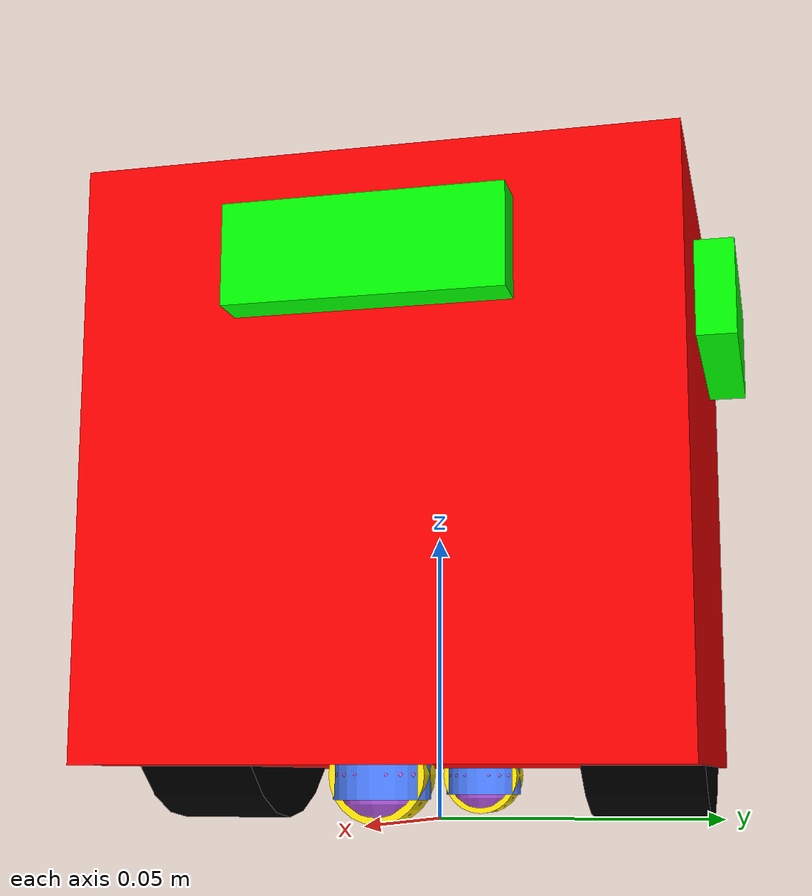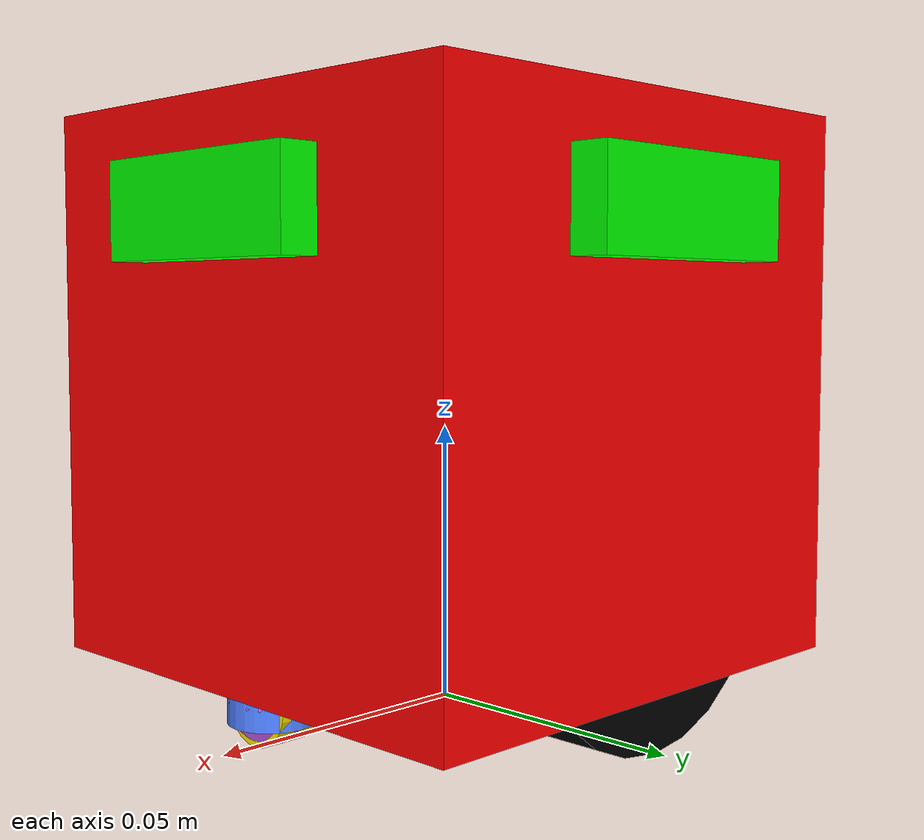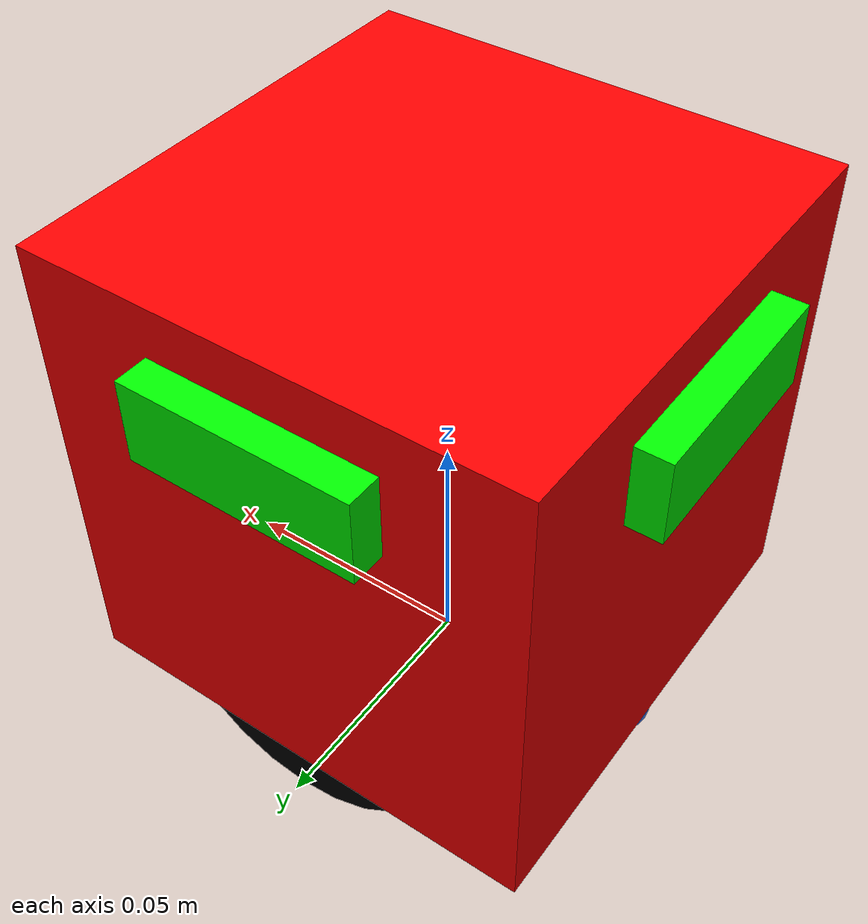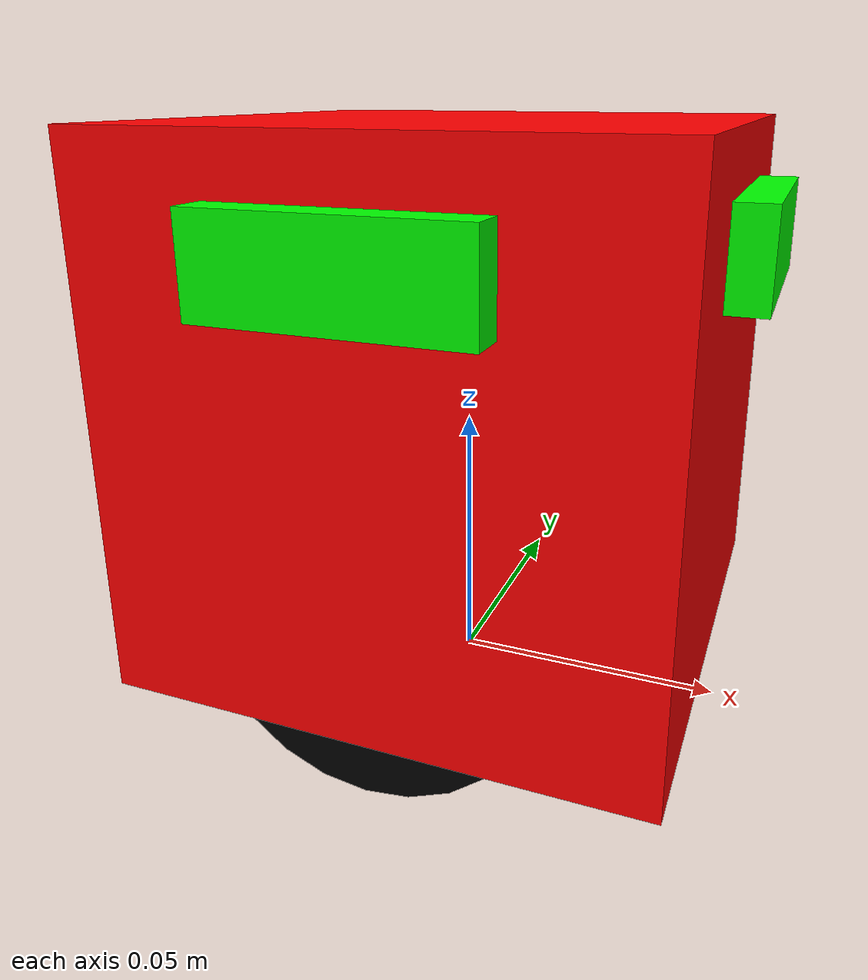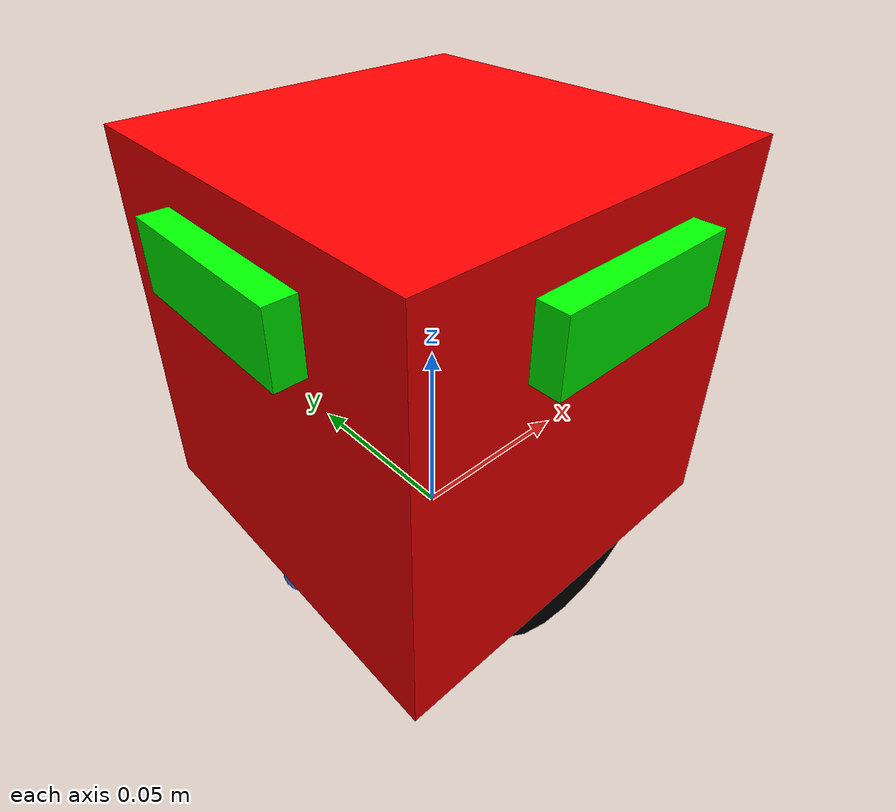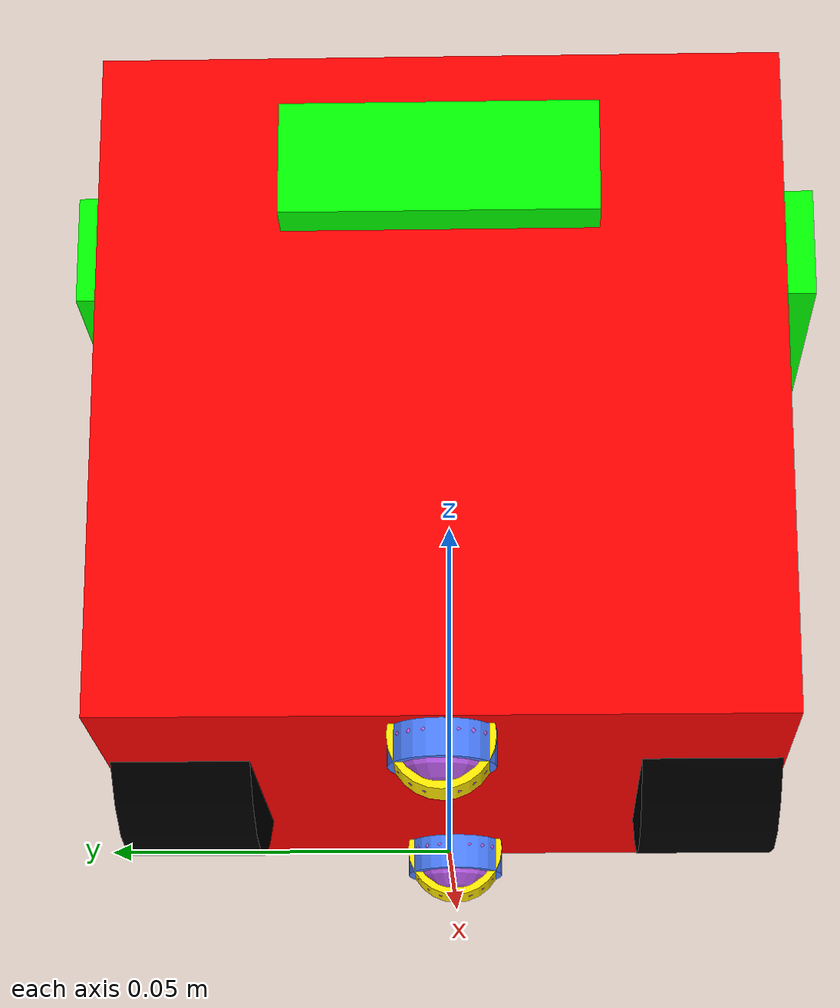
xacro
<?xml version="1.0"?>

<robot xmlns:xacro="http://www.ros.org/wiki/xacro" name="mini_pi">

  <!-- Colors -->
  <xacro:include filename="$(find mini_pi_description)/xacro/materials/materials.xacro"/>

  <!-- Shapes & Caster -->
  <xacro:include filename="$(find mini_pi_description)/xacro/macros/shapes.xacro"/>
  <xacro:include filename="$(find mini_pi_description)/xacro/macros/caster.xacro"/>

  <!-- Robot Parts -->
  <xacro:include filename="$(find mini_pi_description)/xacro/parts/params.xacro"/>
  <xacro:include filename="$(find mini_pi_description)/xacro/parts/chassis.xacro"/>
  <xacro:include filename="$(find mini_pi_description)/xacro/parts/wheels.xacro"/>
  <xacro:include filename="$(find mini_pi_description)/xacro/parts/sensors_ultrasonic.xacro"/>

  <!-- =   Robot Model Assembly   = -->

  <!-- Root link -->
  <link name="base_footprint"/>
  <joint name="footprint_to_base" type="fixed">
    <parent link="base_footprint"/>
    <child  link="base_link"/>
    <origin xyz="0 0 0.0575" rpy="0 0 0"/>
  </joint>

  <!-- Define the base link-->
  <link name="base_link">
    <!-- Placeholder for base_link; no geometry or inertial properties defined -->
  </link>

  <!-- Chassis -->
  <xacro:mini_pi_chassis parent="base_link"/>

  <!-- Wheels left & right -->
  <xacro:mini_pi_wheels parent="base_link"/>

  <!-- Ultrasonic sensors 1,2,3,4 -->
  <xacro:mini_pi_ultrasonic parent="base_link"/>

  <!-- ==== Caster Wheels ==== -->
  <xacro:caster_wheel
    name="front_caster"
    parent_link="base_link"
    pos_x="0.0400" pos_y="0" pos_z="-0.0500"
    color_roll="Yellow"
    color_pitch="Pink"
    color_yaw="Blue"
    length="0.0075"
    radius="0.0075"
    mass="0.0002"/>

  <xacro:caster_wheel
    name="back_caster"
    parent_link="base_link"
    pos_x="-0.0400" pos_y="0" pos_z="-0.0500"
    color_roll="Yellow"
    color_pitch="Pink"
    color_yaw="Blue"
    length="0.0075"
    radius="0.0075"
    mass="0.0002"/>

  <!-- ==== Ros2 Controller ==== -->
  <ros2_control name="MiniPiSystem" type="system">
    <hardware>
      <plugin>gz_ros2_control/GazeboSimSystem</plugin>
    </hardware>

    <joint name="wheel_right_joint">
      <command_interface name="velocity"/>
      <state_interface name="position"/>
      <state_interface name="velocity"/>
    </joint>

    <joint name="wheel_left_joint">
      <command_interface name="velocity"/>
      <state_interface name="position"/>
      <state_interface name="velocity"/>
    </joint>
  </ros2_control>

  <!-- ==== Gazebo plugin ==== -->
  <gazebo>
    <plugin filename="libgz_ros2_control-system.so" name="gz_ros2_control::GazeboSimROS2ControlPlugin">
      <parameters>$(find mini_pi_description)/config/controller.yaml</parameters>
    </plugin>
    <plugin filename="gz-sim-sensors-system" name="gz::sim::systems::Sensors">
      <render_engine>ogre2</render_engine>
    </plugin>

  </gazebo>

</robot>

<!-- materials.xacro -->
<robot xmlns:xacro="http://www.ros.org/wiki/xacro" name="mini_pi">

  <!-- ==== MATERIAL PALETTE ==== -->
  <material name="Red"><color rgba="1.0 0.0 0.0 1.0"/></material>
  <material name="Gray"><color rgba="0.6 0.6 0.6 1"/></material>
  <material name="Blue"><color rgba="0.3 0.5 1.0 1.0"/></material>
  <material name="Black"><color rgba="0.0 0.0 0.0 1.0"/></material>
  <material name="Green"><color rgba="0.0 1.0 0.0 1.0"/></material>
  <material name="Yellow"><color rgba="1.0 0.9 0.0 1.0"/></material>
  <material name="Orange"><color rgba="1.0 0.5 0 0.8"/></material>
  <material name="Pink"><color rgba="0.8 0.4 1.0 1.0"/></material>

</robot>

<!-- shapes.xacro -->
<robot xmlns:xacro="http://www.ros.org/wiki/xacro" name="mini_pi">

  <!-- ===== Macros for squared component ==== -->
  <xacro:macro name="square_link" params="name size_x size_y size_z material mass parent_link xyz rpy joint_type">
    <!-- Squared link -->
    <link name="${name}">
      <visual>
        <origin xyz="0 0 0" rpy="0 0 0"/>
        <geometry>
          <box size="${size_x} ${size_y} ${size_z}"/>
        </geometry>
        <material name="${material}"/>
      </visual>
      <collision>
        <origin xyz="0 0 0" rpy="0 0 0"/>
        <geometry>
          <box size="${size_x} ${size_y} ${size_z}"/>
        </geometry>
      </collision>
      <inertial>
        <mass value="${mass}" />
        <origin xyz="0 0 0" rpy="0 0 0"/>
        <inertia
          ixx="${(1/12.0)*mass*(size_y*size_y + size_z*size_z)}"
          ixy="0.0"
          ixz="0.0"
          iyy="${(1/12.0)*mass*(size_x*size_x + size_z*size_z)}"
          iyz="0.0"
          izz="${(1/12.0)*mass*(size_x*size_x + size_y*size_y)}" />
      </inertial>
    </link>
    <!-- Squared joint -->
    <joint name="${name}_joint" type="${joint_type}">
      <origin xyz="${xyz}" rpy="${rpy}"/>
      <parent link="${parent_link}"/>
      <child link="${name}"/>
      <xacro:if value="${joint_type != 'fixed'}">
        <axis xyz="0 0 1"/>
      </xacro:if>
    </joint>
  </xacro:macro>

  <!-- ==== Macro for Cylindrical Component ==== -->
  <xacro:macro name="cylinder_link" params="name radius length material mass parent_link xyz rpy joint_type axis">
    <link name="${name}">
      <visual>
        <origin xyz="0 0 0" rpy="1.5708 0 0" />
        <geometry>
          <cylinder radius="${radius}" length="${length}" />
        </geometry>
        <material name="${material}">
        </material>
      </visual>
      <collision>
        <origin xyz="0 0 0" rpy="1.5708 0 0" />
        <geometry>
          <cylinder radius="${radius}" length="${length}" />
        </geometry>
      </collision>
      <inertial>
        <mass value="${mass}" />
        <origin xyz="0 0 0" rpy="0 0 0"/>
        <inertia ixx="${(1.0/12.0)*mass*(3.0*(radius*radius) + (length*length))}"
                 ixy="0"
                 ixz="0"
                 iyy="${(1.0/2.0) *mass*(radius*radius)}"
                 iyz="0"
                 izz="${(1.0/12.0)*mass*(3.0*(radius*radius) + (length*length))}"/>
      </inertial>
    </link>
    <!-- Cylinder joint -->
    <joint name="${name}_joint" type="${joint_type}">
      <origin xyz="${xyz}" rpy="${rpy}"/>
      <parent link="${parent_link}" />
      <child link="${name}" />
      <axis xyz="${axis}" />
    </joint>
  </xacro:macro>

</robot>

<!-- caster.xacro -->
<robot xmlns:xacro="http://www.ros.org/wiki/xacro" name="mini_pi">

  <!-- ==== Macro for Caster Wheel ==== -->
  <xacro:macro name="caster_wheel" params="name pos_x pos_y pos_z color_yaw color_pitch color_roll parent_link mass radius length">
    <!-- Caster Wheel Link (Yaw) -->
    <link name="${name}_yaw_link">
      <visual>
        <origin xyz="0 0 0" rpy="0 0 0"/>
        <geometry>
          <cylinder length="${length}" radius="${radius}"/>
        </geometry>
        <material name="${color_yaw}"/>
      </visual>
      <collision>
        <origin xyz="0 0 0" rpy="0 0 0"/>
        <geometry>
          <cylinder length="${length}" radius="${radius}"/>
        </geometry>
      </collision>
      <inertial>
        <origin xyz="0 0 0" rpy="0 0 0"/>
        <mass value="${mass}"/>
        <inertia
          ixx="${(1.0/4.0) * mass * (radius * radius) + (1.0/12.0) * mass * (length * length)}"
          ixy="0.0"
          ixz="0.0"
          iyy="${(1.0/4.0) * mass * (radius * radius) + (1.0/12.0) * mass * (length * length)}"
          iyz="0.0"
          izz="${(1.0/2.0) * mass * (radius * radius)}"/>
      </inertial>
    </link>
    <!-- Yaw Joint -->
    <joint name="${name}_yaw_joint" type="continuous">
      <origin rpy="0 0 0" xyz="${pos_x} ${pos_y} ${pos_z}" />
      <parent link="${parent_link}"/>
      <child link="${name}_yaw_link"/>
      <axis xyz="0 0 1"/>
    </joint>

    <!-- Caster Wheel Link (Roll) -->
    <link name="${name}_roll_link">
      <visual>
        <origin xyz="0 0 0" rpy="0 1.5708 0"/>
        <geometry>
          <cylinder length="${length}" radius="${radius}"/>
        </geometry>
        <material name="${color_roll}"/>
      </visual>
      <collision>
        <origin xyz="0 0 0" rpy="0 1.5708 0"/>
        <geometry>
          <cylinder length="${length}" radius="${radius}"/>
        </geometry>
      </collision>
      <inertial>
        <origin xyz="0 0 0" rpy="0 1.5708 0"/>
        <mass value="${mass}"/>
        <inertia
          ixx="${(1.0/4.0) * mass * (radius * radius) + (1.0/12.0) * mass * (length * length)}"
          ixy="0.0"
          ixz="0.0"
          iyy="${(1.0/4.0) * mass * (radius * radius) + (1.0/12.0) * mass * (length * length)}"
          iyz="0.0"
          izz="${(1.0/2.0) * mass * (radius * radius)}"/>
      </inertial>
    </link>
    <!-- Roll Joint -->
    <joint name="${name}_roll_joint" type="continuous">
      <origin rpy="0 0 0" xyz="0 0 0" />
      <parent link="${name}_yaw_link"/>
      <child link="${name}_roll_link"/>
      <axis xyz="1 0 0"/>
    </joint>

    <!-- Caster Wheel Link (Pitch) -->
    <link name="${name}_pitch_link">
      <visual>
        <origin xyz="0 0 0" rpy="0 0 0"/>
        <geometry>
          <sphere radius="${radius}" />
        </geometry>
        <material name="${color_pitch}"/>
      </visual>
      <collision>
        <origin xyz="0 0 0" rpy="0 0 0"/>
        <geometry>
          <sphere radius="${radius}"/>
        </geometry>
      </collision>
      <inertial>
        <origin xyz="0 0 0" rpy="0 0 0"/>
        <mass value="${mass}"/>
        <inertia
          ixx="${(2.0/5.0) * mass * (radius * radius)}"
          ixy="0.0"
          ixz="0.0"
          iyy="${(2.0/5.0) * mass * (radius * radius)}"
          iyz="0.0"
          izz="${(2.0/5.0) * mass * (radius * radius)}"/>
      </inertial>
    </link>
    <!-- Roll Joint -->
    <joint name="${name}_pitch_joint" type="continuous">
      <origin rpy="0 0 0" xyz="0 0 0" />
      <parent link="${name}_roll_link"/>
      <child link="${name}_pitch_link"/>
      <axis xyz="0 1 0"/>
    </joint>
  </xacro:macro>

</robot>

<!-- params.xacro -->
<robot xmlns:xacro="http://www.ros.org/wiki/xacro" name="mini_pi">

  <!-- Base -->
  <xacro:property name="base_size_x" value="0.097"/>
  <xacro:property name="base_size_y" value="0.097"/>
  <xacro:property name="base_size_z" value="0.097"/>
  <xacro:property name="base_mass" value="1.0"/>

  <!-- Wheels -->
  <xacro:property name="wheel_radius" value="0.03"/>
  <xacro:property name="wheel_width" value="0.02"/>
  <xacro:property name="wheel_mass" value="0.05"/>

  <!-- Ultrasonic sensor -->
  <xacro:property name="ultrasonic_x" value="0.02"/>
  <xacro:property name="ultrasonic_y" value="0.02"/>
  <xacro:property name="ultrasonic_z" value="0.01"/>

</robot>
